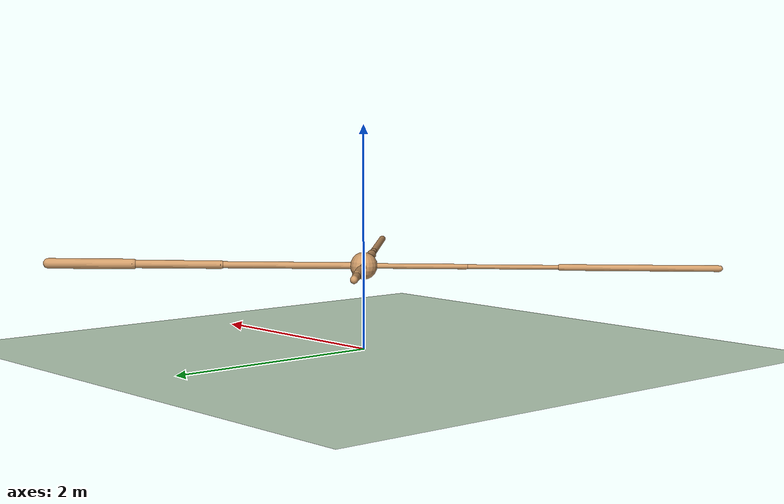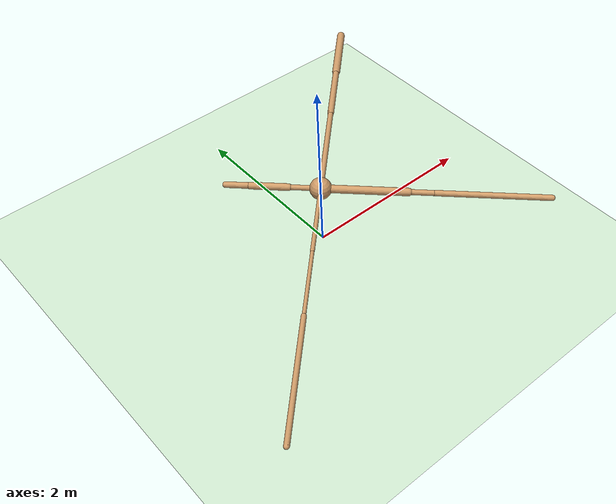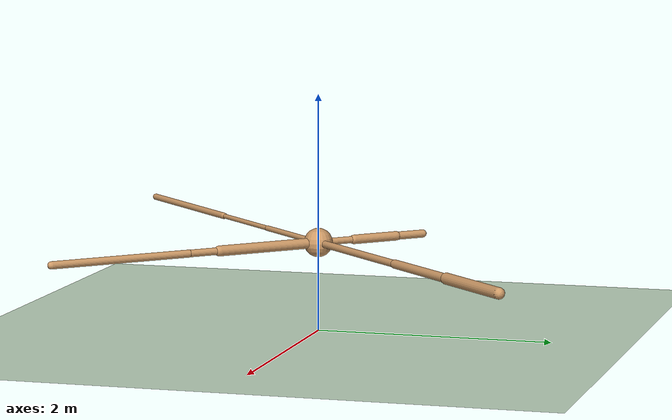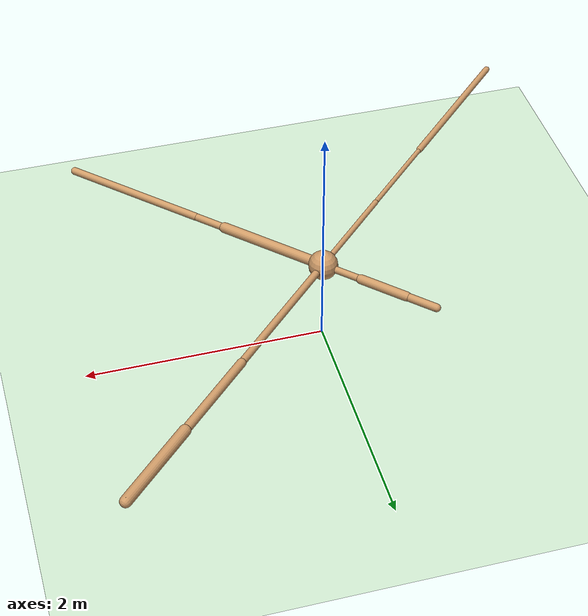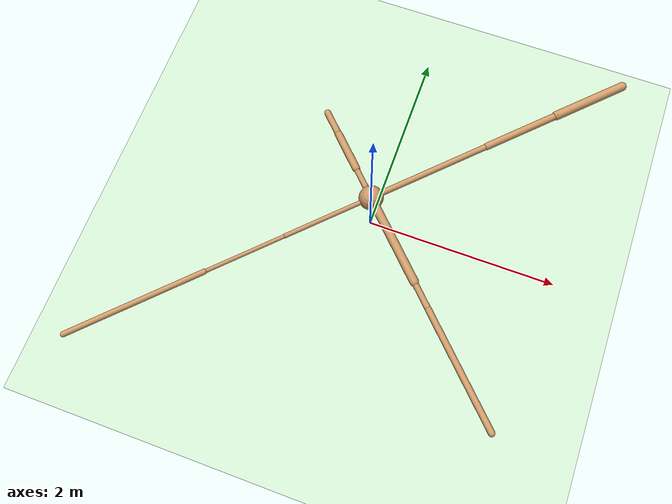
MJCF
<mujoco model="ant">
  <compiler angle="degree" coordinate="local" inertiafromgeom="true" />
  <option integrator="RK4" timestep="0.01" />
  <custom>
    <numeric data="0.0 0.0 0.55 1.0 0.0 0.0 0.0 0.0 1.0 0.0 -1.0 0.0 -1.0 0.0 1.0" name="init_qpos" />
  </custom>
  <default>
    <joint armature="1" damping="1" limited="true" />
    <geom conaffinity="0" condim="3" density="5.0" friction="1 0.5 0.5" margin="0.01" rgba="0.8 0.6 0.4 1" />
  </default>
  <asset>
    <texture builtin="gradient" height="100" rgb1="1 1 1" rgb2="0 0 0" type="skybox" width="100" />
    <texture builtin="flat" height="1278" mark="cross" markrgb="1 1 1" name="texgeom" random="0.01" rgb1="0.8 0.6 0.4" rgb2="0.8 0.6 0.4" type="cube" width="127" />
    <texture builtin="checker" height="100" name="texplane" rgb1="0 0 0" rgb2="0.8 0.8 0.8" type="2d" width="100" />
    <material name="MatPlane" reflectance="0.5" shininess="1" specular="1" texrepeat="60 60" texture="texplane" />
    <material name="geom" texture="texgeom" texuniform="true" />
  </asset>
  <worldbody>
    <light cutoff="100" diffuse="1 1 1" dir="-0 0 -1.3" directional="true" exponent="1" pos="0 0 1.3" specular=".1 .1 .1" />
    <geom conaffinity="1" condim="3" material="MatPlane" name="floor" pos="0 0 0" rgba="0.8 0.9 0.8 1" size="40 40 40" type="plane" />
    <body name="torso" pos="0 0 0.75">
      <camera name="track" mode="trackcom" pos="0 -11 5" xyaxes="1 0 0 0 0.5 1" />
      <geom name="torso_geom" pos="0 0 0" size="0.12149352580308914" type="sphere" />
      <joint armature="0" damping="0" limited="false" margin="0.01" name="root" pos="0 0 0" type="free" />
      <body name="front_left_leg" pos="0 0 0">
        <geom fromto="0 0 0 0.9029417634010315 0.9029417634010315 0" name="aux_1_geom" size="0.03038952685892582" type="capsule" />
        <body name="aux_1" pos="0.9029417634010315 0.9029417634010315 0">
          <joint axis="0 0 1" name="hip_1" pos="0.0 0.0 0.0" range="-30 30" type="hinge" />
          <geom fromto="0 0 0 0.5634047389030457 0.5634047389030457 0" name="left_leg_geom" size="0.036693163216114044" type="capsule" />
          <body name="left_leg_geom_aux" pos="0.5634047389030457 0.5634047389030457 0">
            <joint axis="-1 1 0" name="ankle_1" pos="0.0 0.0 0.0" range="30 70" type="hinge" />
            <geom fromto="0 0 0 0.545644998550415 0.545644998550415 0" name="left_ankle_geom" size="0.046489134430885315" type="capsule" />
          </body>
        </body>
      </body>
      <body name="front_right_leg" pos="0 0 0">
        <geom fromto="0 0 0 -0.24251890182495117 0.24251890182495117 0" name="aux_2_geom" size="0.028875339776277542" type="capsule" />
        <body name="aux_2" pos="-0.24251890182495117 0.24251890182495117 0">
          <joint axis="0 0 1" name="hip_2" pos="0.0 0.0 0.0" range="-30 30" type="hinge" />
          <geom fromto="0 0 0 -0.2906396687030792 0.2906396687030792 0" name="right_leg_geom" size="0.038997016847133636" type="capsule" />
          <body name="right_leg_geom_aux" pos="-0.2906396687030792 0.2906396687030792 0">
            <joint axis="1 1 0" name="ankle_2" pos="0.0 0.0 0.0" range="-70 -30" type="hinge" />
            <geom fromto="0 0 0 -0.18590784072875977 0.18590784072875977 0" name="right_ankle_geom" size="0.03350995481014252" type="capsule" />
          </body>
        </body>
      </body>
      <body name="back_leg" pos="0 0 0">
        <geom fromto="0 0 0 -0.6426242589950562 -0.6426242589950562 0" name="aux_3_geom" size="0.023029092699289322" type="capsule" />
        <body name="aux_3" pos="-0.6426242589950562 -0.6426242589950562 0">
          <joint axis="0 0 1" name="hip_3" pos="0.0 0.0 0.0" range="-30 30" type="hinge" />
          <geom fromto="0 0 0 -0.5839042663574219 -0.5839042663574219 0" name="back_leg_geom" size="0.0199979729950428" type="capsule" />
          <body name="back_leg_geom_aux" pos="-0.5839042663574219 -0.5839042663574219 0">
            <joint axis="-1 1 0" name="ankle_3" pos="0.0 0.0 0.0" range="-70 -30" type="hinge" />
            <geom fromto="0 0 0 -0.9776740074157715 -0.9776740074157715 0" name="third_ankle_geom" size="0.027664879336953163" type="capsule" />
          </body>
        </body>
      </body>
      <body name="right_back_leg" pos="0 0 0">
        <geom fromto="0 0 0 0.6589562892913818 -0.6589562892913818 0" name="aux_4_geom" size="0.04374665021896362" type="capsule" />
        <body name="aux_4" pos="0.6589562892913818 -0.6589562892913818 0">
          <joint axis="0 0 1" name="hip_4" pos="0.0 0.0 0.0" range="-30 30" type="hinge" />
          <geom fromto="0 0 0 0.1975119411945343 -0.1975119411945343 0" name="rightback_leg_geom" size="0.030366774648427963" type="capsule" />
          <body name="rightback_leg_geom_aux" pos="0.1975119411945343 -0.1975119411945343 0">
            <joint axis="1 1 0" name="ankle_4" pos="0.0 0.0 0.0" range="30 70" type="hinge" />
            <geom fromto="0 0 0 0.8694428205490112 -0.8694428205490112 0" name="fourth_ankle_geom" size="0.03193057328462601" type="capsule" />
          </body>
        </body>
      </body>
    </body>
  </worldbody>
  <actuator>
    <motor ctrllimited="true" ctrlrange="-1.0 1.0" joint="hip_4" gear="150" />
    <motor ctrllimited="true" ctrlrange="-1.0 1.0" joint="ankle_4" gear="150" />
    <motor ctrllimited="true" ctrlrange="-1.0 1.0" joint="hip_1" gear="150" />
    <motor ctrllimited="true" ctrlrange="-1.0 1.0" joint="ankle_1" gear="150" />
    <motor ctrllimited="true" ctrlrange="-1.0 1.0" joint="hip_2" gear="150" />
    <motor ctrllimited="true" ctrlrange="-1.0 1.0" joint="ankle_2" gear="150" />
    <motor ctrllimited="true" ctrlrange="-1.0 1.0" joint="hip_3" gear="150" />
    <motor ctrllimited="true" ctrlrange="-1.0 1.0" joint="ankle_3" gear="150" />
  </actuator>
</mujoco>
